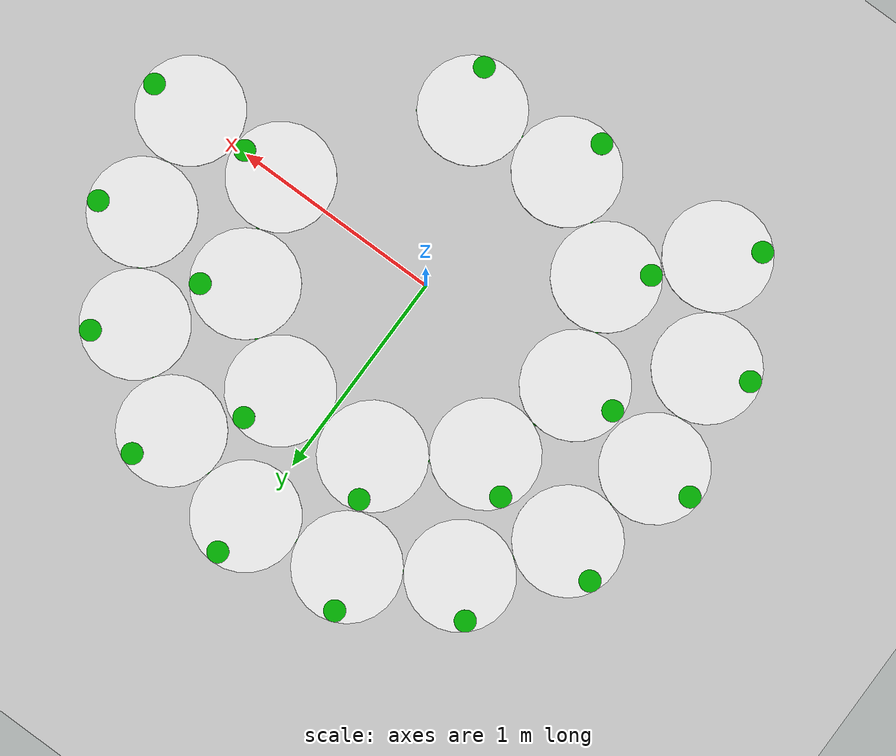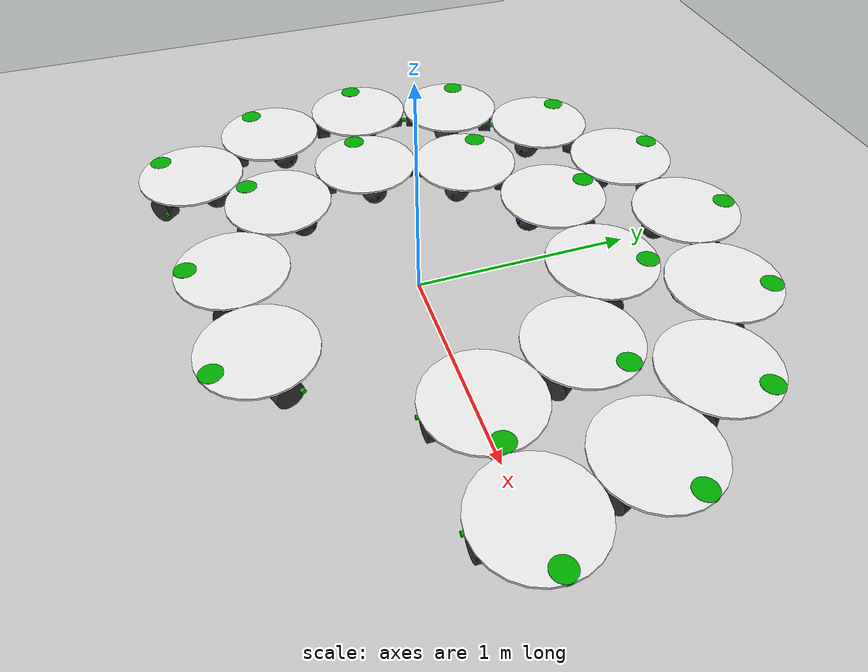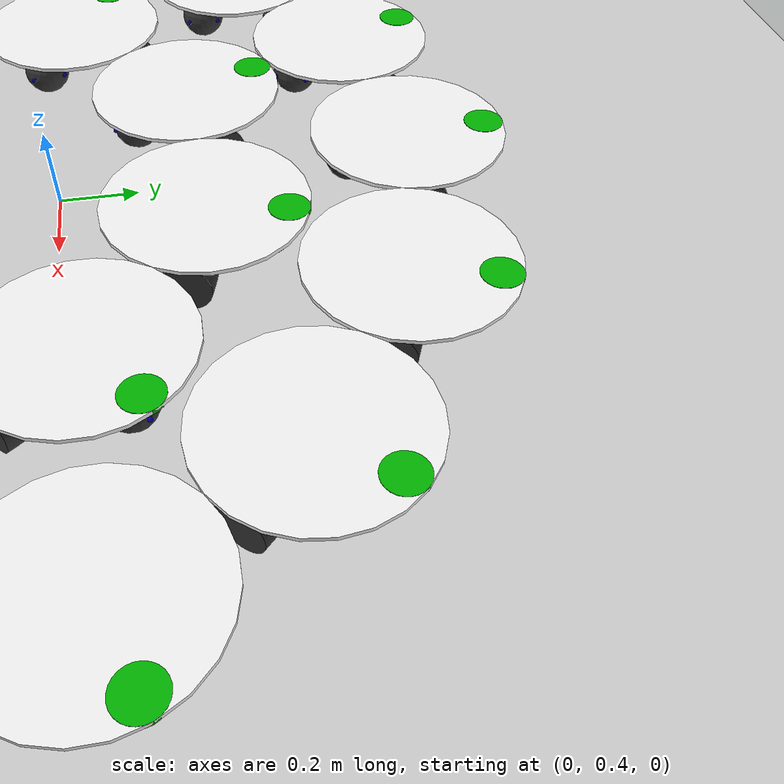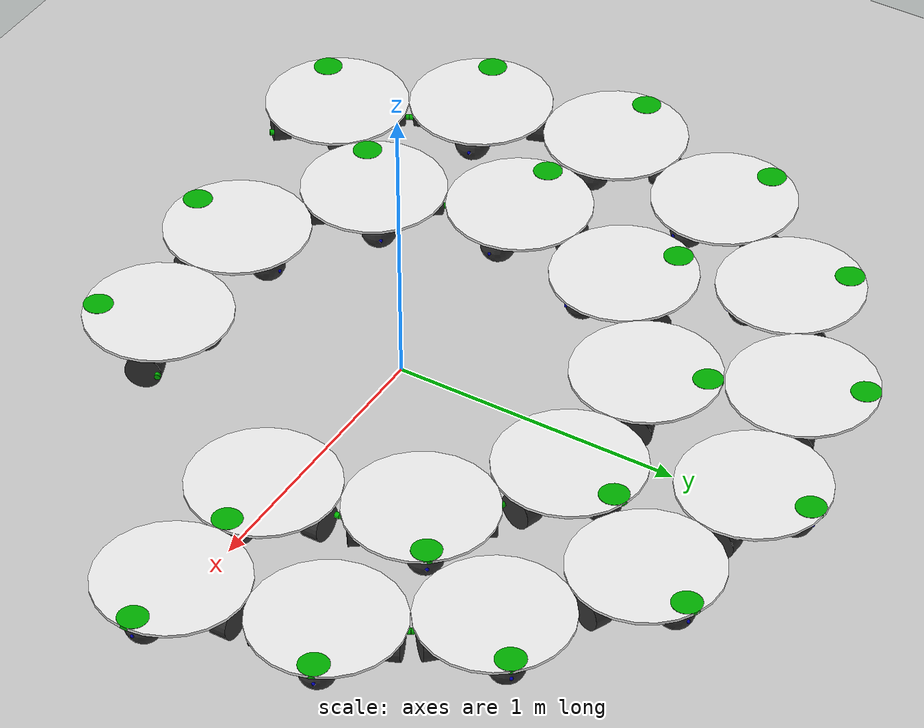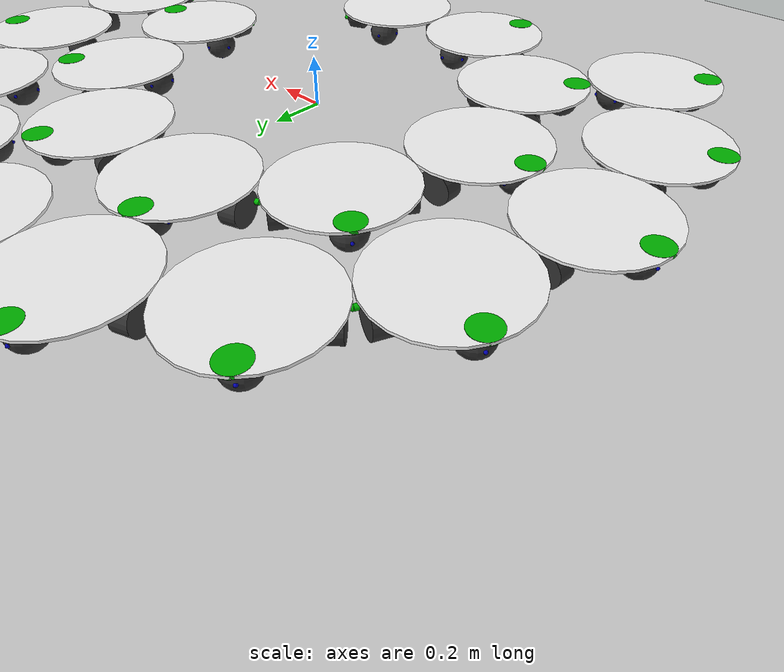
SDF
<sdf version="1.6">
 <world name="default">
  <include><uri>model://ground_plane</uri></include>
  <include><uri>model://sun</uri></include>
  <include><name>m_4wrobot1</name><pose>0.8 0.0 0.005 0 0 0</pose><uri>model://m_4wrobot</uri></include>
  <include>
   <name>m_4wrobot2</name>
   <pose>0.64375 0.4749588797990832 0.005 0 0 0.6356474078557615</pose>
   <uri>model://m_4wrobot</uri>
  </include>
  <include>
   <name>m_4wrobot3</name>
   <pose>0.2360351562500001 0.7643869471766496 0.005 0 0 1.271294815711523</pose>
   <uri>model://m_4wrobot</uri>
  </include>
  <include>
   <name>m_4wrobot4</name>
   <pose>-0.26388092041015615 0.7552263633133373 0.005 0 0 1.9069422235672844</pose>
   <uri>model://m_4wrobot</uri>
  </include>
  <include>
   <name>m_4wrobot5</name>
   <pose>-0.6607185125350952 0.4510554812807526 0.005 0 0 2.542589631423046</pose>
   <uri>model://m_4wrobot</uri>
  </include>
  <include>
   <name>m_4wrobot6</name>
   <pose>-0.7994629357010127 -0.029308948127125846 0.005 0 0 3.178237039278807</pose>
   <uri>model://m_4wrobot</uri>
  </include>
  <include>
   <name>m_4wrobot7</name>
   <pose>-0.6259171496087224 -0.4982245696728458 0.005 0 0 3.8138844471345683</pose>
   <uri>model://m_4wrobot</uri>
  </include>
  <include>
   <name>m_4wrobot8</name>
   <pose>-0.20787247695052505 -0.7725212186901105 0.005 0 0 4.4495318549903295</pose>
   <uri>model://m_4wrobot</uri>
  </include>
  <include>
   <name>m_4wrobot9</name>
   <pose>0.29137238201647103 -0.745051766656551 0.005 0 0 5.085179262846091</pose>
   <uri>model://m_4wrobot</uri>
  </include>
  <include><name>m_4wrobot10</name><pose>1.3 0.0 0.005 0 0 0</pose><uri>model://m_4wrobot</uri></include>
  <include>
   <name>m_4wrobot11</name>
   <pose>1.203846153846154 0.49066733931434897 0.005 0 0 0.38702638502157094</pose>
   <uri>model://m_4wrobot</uri>
  </include>
  <include>
   <name>m_4wrobot12</name>
   <pose>0.9296085571233501 0.9087507526946227 0.005 0 0 0.7740527700431419</pose>
   <uri>model://m_4wrobot</uri>
  </include>
  <include>
   <name>m_4wrobot13</name>
   <pose>0.5178549016544888 1.1924035813567568 0.005 0 0 1.1610791550647128</pose>
   <uri>model://m_4wrobot</uri>
  </include>
  <include>
   <name>m_4wrobot14</name>
   <pose>0.029495491503010597 1.29966534768801 0.005 0 0 1.5481055400862838</pose>
   <uri>model://m_4wrobot</uri>
  </include>
  <include>
   <name>m_4wrobot15</name>
   <pose>-0.4632271570364868 1.214668926491451 0.005 0 0 1.9351319251078547</pose>
   <uri>model://m_4wrobot</uri>
  </include>
  <include>
   <name>m_4wrobot16</name>
   <pose>-0.8874250782037229 0.9499877528553284 0.005 0 0 2.3221583101294256</pose>
   <uri>model://m_4wrobot</uri>
  </include>
  <include>
   <name>m_4wrobot17</name>
   <pose>-1.1803471002283965 0.5447758465482989 0.005 0 0 2.709184695150997</pose>
   <uri>model://m_4wrobot</uri>
  </include>
  <include>
   <name>m_4wrobot18</name>
   <pose>-1.2986615630476859 0.058975797260752326 0.005 0 0 3.0962110801725675</pose>
   <uri>model://m_4wrobot</uri>
  </include>
  <include>
   <name>m_4wrobot19</name>
   <pose>-1.2248663271912825 -0.43554848239081084 0.005 0 0 3.4832374651941382</pose>
   <uri>model://m_4wrobot</uri>
  </include>
  <include>
   <name>m_4wrobot20</name>
   <pose>-0.9698778476675296 -0.8656425131679938 0.005 0 0 3.870263850215709</pose>
   <uri>model://m_4wrobot</uri>
  </include>
  <plugin name="wp_swarm" filename="libwp_swarm.so"/>
 </world>
</sdf>

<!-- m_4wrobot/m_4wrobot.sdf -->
<!--Prefer Using this version.-->

<!--scale -->
<!--chassis length -->
<!--chassis radius -->
<!--wheel radius -->
<!--wheel length -->
<!--friction coefficient on wheels range from 0 to 1 -->
<!--slip coefficient range from 0 to 1 -->
<!--chassis mass-->
<!--mass of revolute wheels-->
<!--mass of caster wheels-->

<?xml version='1.0'?>
<sdf version='1.6'>
  <model name='m_4wrobot'>
	  <static>false</static>
	  <pose>0 0 0 0 0 0</pose>
	  <link name = 'chassis'>
		  <pose>0 0 0.126 0 0 0</pose>
		  <inertial>
			<mass>1</mass>
			<inertia>
				<ixx>0.015633333333333332</ixx>
				<ixy>0</ixy>
				<ixz>0</ixz>
				<iyy>0.015633333333333332</iyy>
				<iyz>0</iyz>
				<izz>0.015633333333333332</izz>
			</inertia>
		 </inertial>
		  <visual name='visual'>
			  <geometry>
				  <cylinder>
					  <radius>0.25</radius>
					  <length>0.01</length>
				  </cylinder>
			  </geometry>
			  <material>
				<ambient>0.95 0.95 0.95 01</ambient>
				<diffuse>0.95 0.95 0.95 01</diffuse>
				<specular>0 0 0 0</specular>
				<emissive>0 0 0 0</emissive>
			  </material>
		  </visual>
		  <visual name = 'visual1'>
			  <pose>0.2 0 0 0 0 0</pose>
			  <geometry>
				  <cylinder>
					  <radius>0.05</radius>
					  <length>0.0121</length>
				  </cylinder>
			  </geometry>
			  <material>
				<ambient>0 0.7 0 01</ambient>
				<diffuse>0 0.7 0 01</diffuse>
				<specular>0 0 0 0</specular>
				<emissive>0 0 0 0</emissive>
			  </material>
		  </visual>
		  <collision name='collision'>
			  <geometry>
				  <cylinder>
					  <radius>0.25</radius>
					  <length>0.0605</length><!--2*wr-->
				  </cylinder>
			  </geometry>
		  </collision>
		  <sensor name='chassis_contact' type='contact'>
			  <contact>
				  <collision>collision</collision>
			  </contact>
			  <update_rate>1</update_rate>
			  <always_on>true</always_on>
			  <visualize>false</visualize>
		  </sensor>
	  </link>
	  <link name = 'wheelL'>
		  <pose>0 0.2 0.0605 0 1.5705 1.5705</pose>
	    <inertial>
			<mass>1</mass>
			<inertia>
				<ixx>0.0012200833333333332</ixx>
				<ixy>0</ixy>
				<ixz>0</ixz>
				<iyy>0.0012200833333333332</iyy>
				<iyz>0</iyz>
				<izz>0.0012200833333333332</izz>
			</inertia>
		 </inertial>
		  <visual name = 'visual'>
			  <geometry>
				  <cylinder>
					  <radius>0.0605</radius>
					  <length>0.0605</length>
				  </cylinder>
			  </geometry>
			  <material>
				<ambient>0.2 0.2 0.2 01</ambient>
				<diffuse>0.2 0.2 0.2 01</diffuse>
				<specular>0 0 0 0</specular>
				<emissive>0 0 0 0</emissive>
			  </material>
		  </visual>
		  <visual name = 'visual1'>
			  <pose>0 0.05 0.03025 0 0 0</pose>
			  <geometry>
				  <cylinder>
					  <radius>0.010083333333333333</radius>
					  <length>0.03025</length>
				  </cylinder>
			  </geometry>
			  <material>
				<ambient>0 0.7 0 01</ambient>
				<diffuse>0 0.7 0 01</diffuse>
				<specular>0 0 0 0</specular>
				<emissive>0 0 0 0</emissive>
			  </material>
		  </visual>

		  <collision name = 'collision'>
			  <geometry>
				  <cylinder>
					  <radius>0.0605</radius>
					  <length>0.0605</length>
				  </cylinder>
			  </geometry>
		  </collision>
      </link>

      <joint type='revolute' name='L_joint'>
		  <pose>0 0 -0.03025 0 0 0</pose>
		  <child>wheelL</child>
		  <parent>chassis</parent>
		  <axis>
			  <xyz>0 0 1</xyz>
		  </axis>
		  <physics>
			  <ode>
				  <max_force>0</max_force>
			  </ode>
		  </physics>
      </joint>
      <link name = 'wheelR'>
		  <pose>0 -0.2 0.0605 0 1.5705 1.5705</pose>
		  <inertial>
		    <mass>1</mass>
			<inertia>
				<ixx>0.0012200833333333332</ixx>
				<ixy>0</ixy>
				<ixz>0</ixz>
				<iyy>0.0012200833333333332</iyy>
				<iyz>0</iyz>
				<izz>0.0012200833333333332</izz>
			</inertia>
		 </inertial>
		  <visual name = 'visual'>
			  <geometry>
				  <cylinder>
					  <radius>0.0605</radius>
					  <length>0.0605</length>
				  </cylinder>
			  </geometry>
			  <material>
				<ambient>0.2 0.2 0.2 01</ambient>
				<diffuse>0.2 0.2 0.2 01</diffuse>
				<specular>0 0 0 0</specular>
				<emissive>0 0 0 0</emissive>
			  </material>
		  </visual>
		  <visual name = 'visual1'>
			  <pose>0 0.05 -0.03025 0 0 0</pose>
			  <geometry>
				  <cylinder>
					  <radius>0.010083333333333333</radius>
					  <length>0.03025</length>
				  </cylinder>
			  </geometry>
			  <material>
				<ambient>0 0.7 0 01</ambient>
				<diffuse>0 0.7 0 01</diffuse>
				<specular>0 0 0 0</specular>
				<emissive>0 0 0 0</emissive>
			  </material>
		  </visual>
		  <collision name = 'collision'>
			  <geometry>
				  <cylinder>
					  <radius>0.0605</radius>
					  <length>0.0605</length>
				  </cylinder>
			  </geometry>
		  </collision>
      </link>
      <joint type='revolute' name='R_joint'>
		  <pose>0 0 0.03025 0 0 0</pose>
		  <child>wheelR</child>
		  <parent>chassis</parent>
		  <axis>
			  <xyz>0 0 1</xyz>
		  </axis>
		  <physics>
			  <ode>
				  <max_force>0</max_force>
			  </ode>
		  </physics>
      </joint>
      <link name = 'wheelB'>
		  <pose>-0.15 0 0.0605 0 1.5705 1.5705</pose>
		  <inertial>
			<mass>0.1</mass>
			<inertia>
				<ixx>0.00014641000000000003</ixx>
				<ixy>0</ixy>
				<ixz>0</ixz>
				<iyy>0.00014641000000000003</iyy>
				<iyz>0</iyz>
				<izz>0.00014641000000000003</izz>
			</inertia>
		 </inertial>
		 <visual name = 'visual1'>
			  <pose>0.0605 0 0 0 0 0</pose>
			  <geometry>
				  <sphere>
					  <radius>0.00605</radius>
				  </sphere>
			  </geometry>
			  <material>
				<ambient>0 0 0.7 01</ambient>
				<diffuse>0 0 0.7 01</diffuse>
				<specular>0 0 0 0</specular>
				<emissive>0 0 0 0</emissive>
			  </material>
		  </visual>
		  <visual name = 'visual2'>
			  <pose>0 0.0605 0 0 0 0</pose>
			  <geometry>
				  <sphere>
					  <radius>0.00605</radius>
				  </sphere>
			  </geometry>
			  <material>
				<ambient>0 0 0.7 01</ambient>
				<diffuse>0 0 0.7 01</diffuse>
				<specular>0 0 0 0</specular>
				<emissive>0 0 0 0</emissive>
			  </material>
		  </visual>
		  <visual name = 'visual3'>
			  <pose>0 0 0.0605 0 0 0</pose>
			  <geometry>
				  <sphere>
					  <radius>0.00605</radius>
				  </sphere>
			  </geometry>
			  <material>
				<ambient>0 0 0.7 01</ambient>
				<diffuse>0 0 0.7 01</diffuse>
				<specular>0 0 0 0</specular>
				<emissive>0 0 0 0</emissive>
			  </material>
		  </visual>
		  <visual name = 'visual4'>
			  <pose>-0.0605 0 0 0 0 0</pose>
			  <geometry>
				  <sphere>
					  <radius>-0.00605</radius>
				  </sphere>
			  </geometry>
			  <material>
				<ambient>0 0 0.7 01</ambient>
				<diffuse>0 0 0.7 01</diffuse>
				<specular>0 0 0 0</specular>
				<emissive>0 0 0 0</emissive>
			  </material>
		  </visual>
		  <visual name = 'visual5'>
			  <pose>0 -0.0605 0 0 0 0</pose>
			  <geometry>
				  <sphere>
					  <radius>0.00605</radius>
				  </sphere>
			  </geometry>
			  <material>
				<ambient>0 0 0.7 01</ambient>
				<diffuse>0 0 0.7 01</diffuse>
				<specular>0 0 0 0</specular>
				<emissive>0 0 0 0</emissive>
			  </material>
		  </visual>
		  <visual name = 'visual6'>
			  <pose>0 0 -0.0605 0 0 0</pose>
			  <geometry>
				  <sphere>
					  <radius>0.00605</radius>
				  </sphere>
			  </geometry>
			  <material>
				<ambient>0 0 0.7 01</ambient>
				<diffuse>0 0 0.7 01</diffuse>
				<specular>0 0 0 0</specular>
				<emissive>0 0 0 0</emissive>
			  </material>
		  </visual>
		  <visual name = 'visual'>
			  <geometry>
				  <sphere>
					  <radius>0.0605</radius>
				  </sphere>
			  </geometry>
			  <material>
				<ambient>0.2 0.2 0.2 01</ambient>
				<diffuse>0.2 0.2 0.2 01</diffuse>
				<specular>0 0 0 0</specular>
				<emissive>0 0 0 0</emissive>
			  </material>
		  </visual>
		  <collision name = 'collision'>
			  <geometry>
				  <sphere>
					  <radius>0.0605</radius>
				  </sphere>
			  </geometry>
		  </collision>
      </link>
      <joint type='ball' name='B_joint'>
		  <child>wheelB</child>
		  <parent>chassis</parent>
      </joint>

      <link name = 'wheelF'>
		  <pose>0.15 0 0.0605 0 1.5705 1.5705</pose>
		  <inertial>
			<mass>0.1</mass>
			<inertia>
				<ixx>0.00014641000000000003</ixx>
				<ixy>0</ixy>
				<ixz>0</ixz>
				<iyy>0.00014641000000000003</iyy>
				<iyz>0</iyz>
				<izz>0.00014641000000000003</izz>
			</inertia>
		 </inertial>
		 <visual name = 'visual1'>
			  <pose>0.0605 0 0 0 0 0</pose>
			  <geometry>
				  <sphere>
					  <radius>0.00605</radius>
				  </sphere>
			  </geometry>
			  <material>
				<ambient>0 0 0.7 01</ambient>
				<diffuse>0 0 0.7 01</diffuse>
				<specular>0 0 0 0</specular>
				<emissive>0 0 0 0</emissive>
			  </material>
		  </visual>
		  <visual name = 'visual2'>
			  <pose>0 0.0605 0 0 0 0</pose>
			  <geometry>
				  <sphere>
					  <radius>0.00605</radius>
				  </sphere>
			  </geometry>
			  <material>
				<ambient>0 0 0.7 01</ambient>
				<diffuse>0 0 0.7 01</diffuse>
				<specular>0 0 0 0</specular>
				<emissive>0 0 0 0</emissive>
			  </material>
		  </visual>
		  <visual name = 'visual3'>
			  <pose>0 0 0.0605 0 0 0</pose>
			  <geometry>
				  <sphere>
					  <radius>0.00605</radius>
				  </sphere>
			  </geometry>
			  <material>
				<ambient>0 0 0.7 01</ambient>
				<diffuse>0 0 0.7 01</diffuse>
				<specular>0 0 0 0</specular>
				<emissive>0 0 0 0</emissive>
			  </material>
		  </visual>
		  <visual name = 'visual4'>
			  <pose>-0.0605 0 0 0 0 0</pose>
			  <geometry>
				  <sphere>
					  <radius>-0.00605</radius>
				  </sphere>
			  </geometry>
			  <material>
				<ambient>0 0 0.7 01</ambient>
				<diffuse>0 0 0.7 01</diffuse>
				<specular>0 0 0 0</specular>
				<emissive>0 0 0 0</emissive>
			  </material>
		  </visual>
		  <visual name = 'visual5'>
			  <pose>0 -0.0605 0 0 0 0</pose>
			  <geometry>
				  <sphere>
					  <radius>0.00605</radius>
				  </sphere>
			  </geometry>
			  <material>
				<ambient>0 0 0.7 01</ambient>
				<diffuse>0 0 0.7 01</diffuse>
				<specular>0 0 0 0</specular>
				<emissive>0 0 0 0</emissive>
			  </material>
		  </visual>
		  <visual name = 'visual6'>
			  <pose>0 0 -0.0605 0 0 0</pose>
			  <geometry>
				  <sphere>
					  <radius>0.00605</radius>
				  </sphere>
			  </geometry>
			  <material>
				<ambient>0 0 0.7 01</ambient>
				<diffuse>0 0 0.7 01</diffuse>
				<specular>0 0 0 0</specular>
				<emissive>0 0 0 0</emissive>
			  </material>
		  </visual>
		  <visual name = 'visual'>
			  <geometry>
				  <sphere>
					  <radius>0.0605</radius>
				  </sphere>
			  </geometry>
			  <material>
				<ambient>0.2 0.2 0.2 01</ambient>
				<diffuse>0.2 0.2 0.2 01</diffuse>
				<specular>0 0 0 0</specular>
				<emissive>0 0 0 0</emissive>
			  </material>
		  </visual>
		  <collision name = 'collision'>
			  <geometry>
				  <sphere>
					  <radius>0.0605</radius>
				  </sphere>
			  </geometry>
		  </collision>
      </link>

      <joint type='ball' name='F_joint'>
		  <child>wheelF</child>
		  <parent>chassis</parent>
      </joint>

  </model>
 </sdf>
